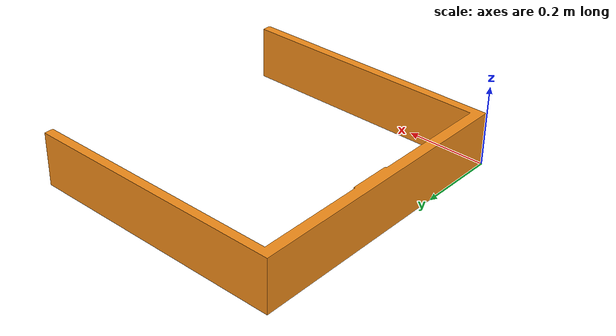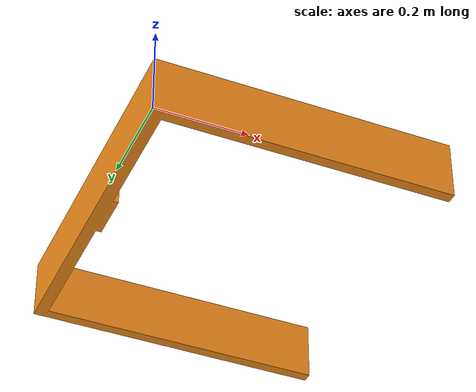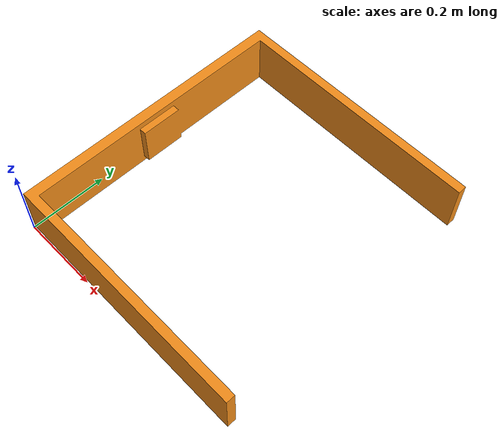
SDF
<?xml version="1.0" ?>
<sdf version="1.6">
  <model name="overhead_camera_mount">
    <static>true</static>
    <link name="link">

      <!-- Inertial properties -->
      <inertial>
        <mass>1.0</mass>
        <inertia>
          <!-- Replace these values with actual values for your object -->
          <ixx>0.136322</ixx>
          <ixy>0</ixy>
          <ixz>0.009477</ixz>
          <iyy>0.189113</iyy>
          <iyz>0</iyz>
          <izz>0.178258</izz>
        </inertia>
        <pose>0 0 0 0 0 0</pose> <!-- Optional: adjust pose of the center of mass -->
      </inertial>
      <!-- Visual properties -->
      <visual name="visual">
        <material>
          <script>
            <name>Gazebo/Orange</name>
            <uri>model://overhead_camera_mount/media/materials/scripts/gazebo.material</uri>
          </script>
        </material>
        <geometry>
          <mesh>
            <scale>0.0009 0.0009 0.0009</scale>
            <uri>model://overhead_camera_mount/meshes/overhead.STL</uri>
          </mesh>
        </geometry>
      </visual>

      <!-- Collision properties -->
      <collision name="collision">
        <geometry>
          <mesh>
            <scale>0.0009 0.0009 0.0009</scale>
            <uri>model://overhead_camera_mount/meshes/overhead.STL</uri>
          </mesh>
        </geometry>
      </collision>

    </link>
  </model>
</sdf>
